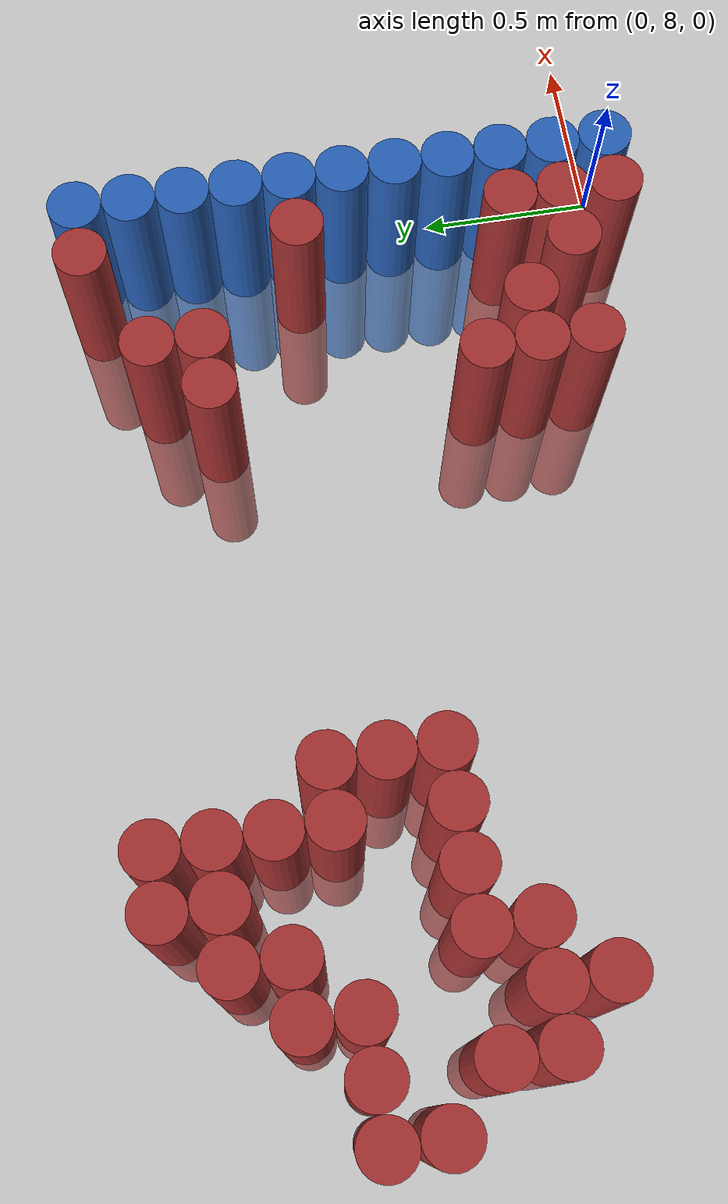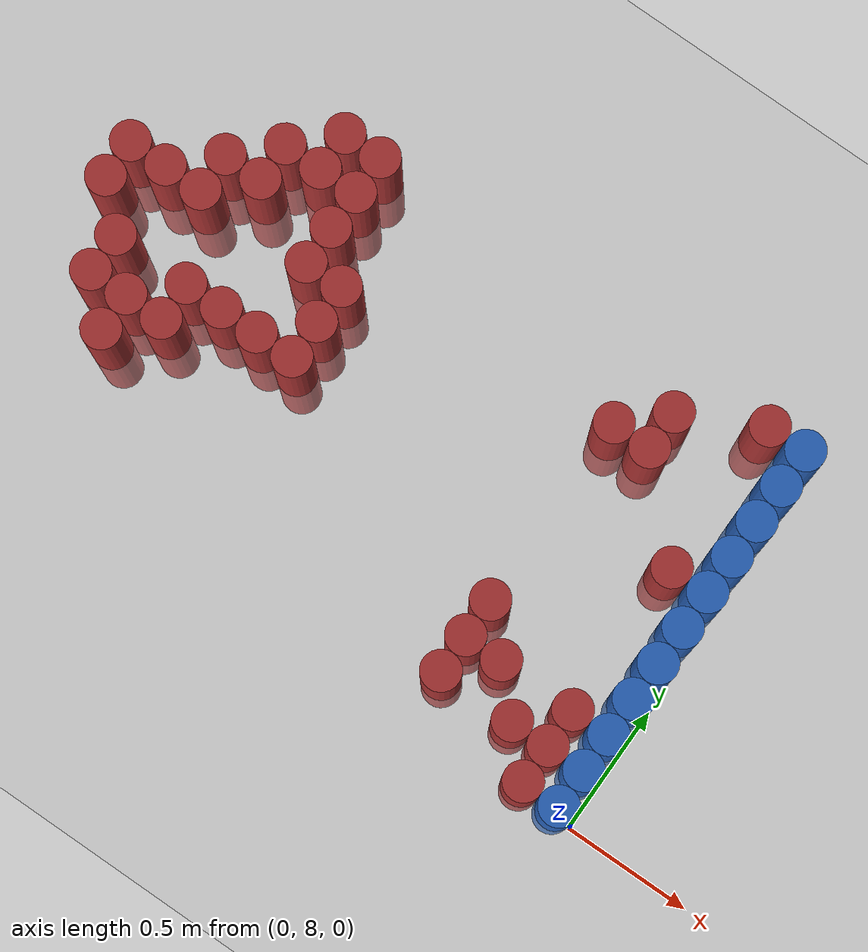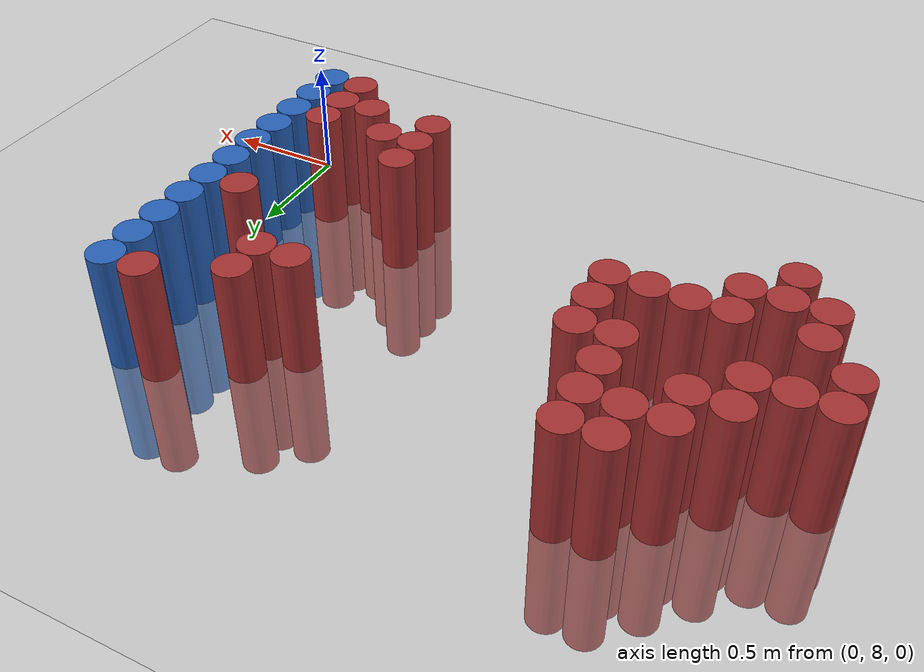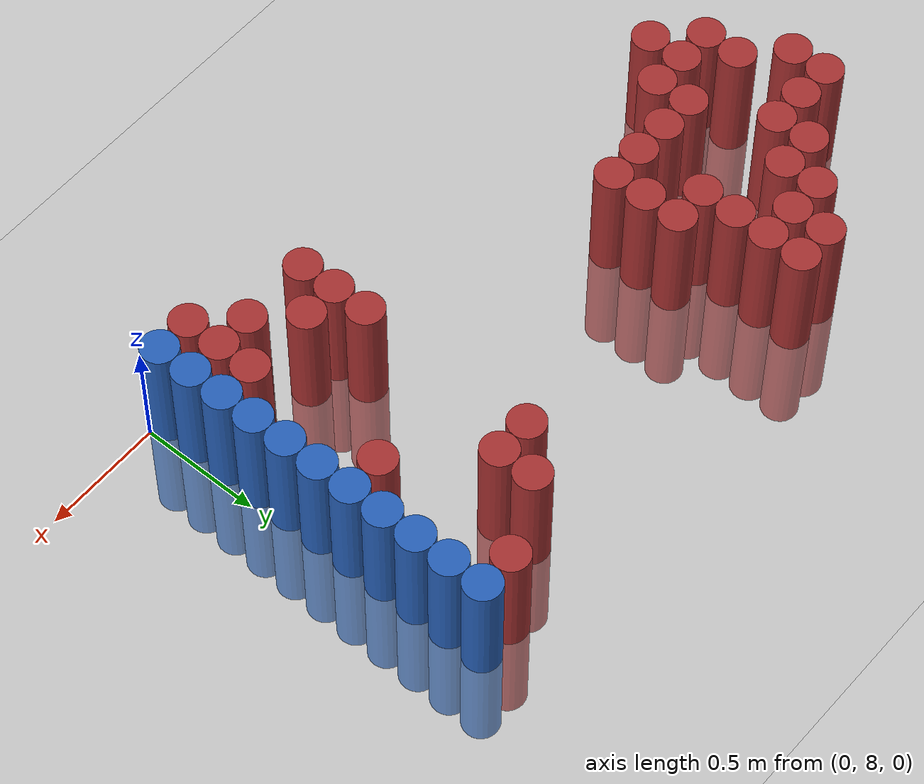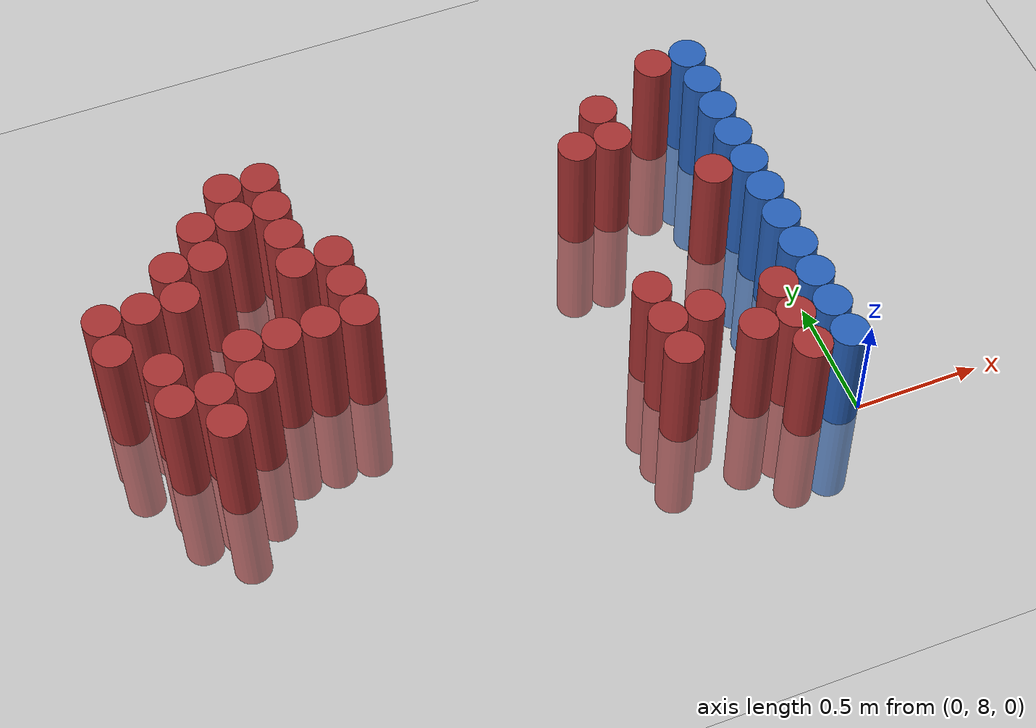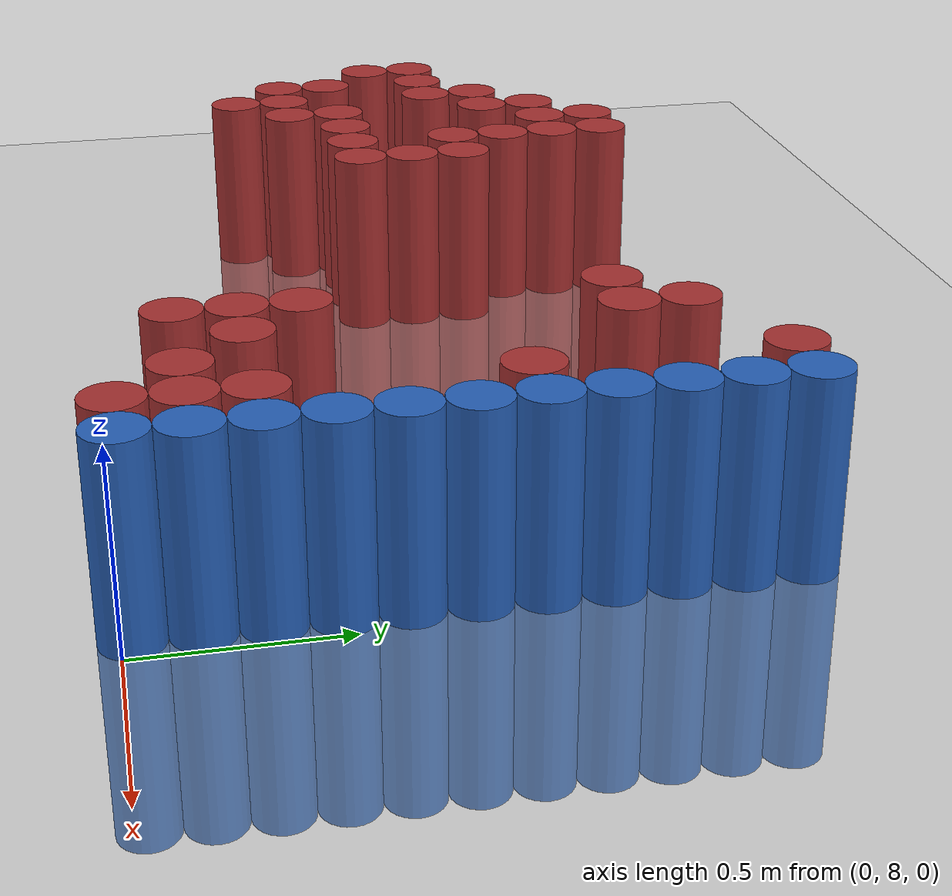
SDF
<sdf version="1.6">
 <world name="default">
  <model name="ground_plane">
   <static>1</static>
   <link name="link">
    <collision name="collision">
     <geometry><plane><normal>0 0 1</normal><size>100 100</size></plane></geometry>
     <surface><friction><ode><mu>100</mu><mu2>50</mu2></ode></friction></surface>
    </collision>
    <visual name="visual">
     <cast_shadows>0</cast_shadows>
     <geometry><plane><normal>0 0 1</normal><size>100 100</size></plane></geometry>
     <material>
      <script><uri>file://media/materials/scripts/gazebo.material</uri><name>Gazebo/Grey</name></script>
     </material>
    </visual>
   </link>
  </model>
  <model name="unit_cylinder_225">
   <static>1</static>
   <pose>-2.625000 8.925000 0.000000 0.000000 0.000000 0.000000</pose>
   <link name="link">
    <inertial>
     <mass>1</mass>
     <inertia><ixx>0.145833</ixx><ixy>0</ixy><ixz>0</ixz><iyy>0.145833</iyy><iyz>0</iyz><izz>0.125</izz></inertia>
    </inertial>
    <collision name="collision">
     <geometry><cylinder><radius>0.075000</radius><length>1</length></cylinder></geometry>
    </collision>
    <visual name="visual">
     <geometry><cylinder><radius>0.075000</radius><length>1</length></cylinder></geometry>
     <material>
      <ambient>0.648000 0.192000 0.192000 1</ambient>
      <diffuse>0.648000 0.192000 0.192000 1</diffuse>
     </material>
     <material>
      <script><name>Gazebo/Grey</name><uri>file://media/materials/scripts/gazebo.material</uri></script>
     </material>
    </visual>
   </link>
  </model>
  <model name="unit_cylinder_226">
   <static>1</static>
   <pose>-2.625000 9.075000 0.000000 0.000000 0.000000 0.000000</pose>
   <link name="link">
    <inertial>
     <mass>1</mass>
     <inertia><ixx>0.145833</ixx><ixy>0</ixy><ixz>0</ixz><iyy>0.145833</iyy><iyz>0</iyz><izz>0.125</izz></inertia>
    </inertial>
    <collision name="collision">
     <geometry><cylinder><radius>0.075000</radius><length>1</length></cylinder></geometry>
    </collision>
    <visual name="visual">
     <geometry><cylinder><radius>0.075000</radius><length>1</length></cylinder></geometry>
     <material>
      <ambient>0.648000 0.192000 0.192000 1</ambient>
      <diffuse>0.648000 0.192000 0.192000 1</diffuse>
     </material>
     <material>
      <script><name>Gazebo/Grey</name><uri>file://media/materials/scripts/gazebo.material</uri></script>
     </material>
    </visual>
   </link>
  </model>
  <model name="unit_cylinder_230">
   <static>1</static>
   <pose>-2.475000 8.625000 0.000000 0.000000 0.000000 0.000000</pose>
   <link name="link">
    <inertial>
     <mass>1</mass>
     <inertia><ixx>0.145833</ixx><ixy>0</ixy><ixz>0</ixz><iyy>0.145833</iyy><iyz>0</iyz><izz>0.125</izz></inertia>
    </inertial>
    <collision name="collision">
     <geometry><cylinder><radius>0.075000</radius><length>1</length></cylinder></geometry>
    </collision>
    <visual name="visual">
     <geometry><cylinder><radius>0.075000</radius><length>1</length></cylinder></geometry>
     <material>
      <ambient>0.648000 0.192000 0.192000 1</ambient>
      <diffuse>0.648000 0.192000 0.192000 1</diffuse>
     </material>
     <material>
      <script><name>Gazebo/Grey</name><uri>file://media/materials/scripts/gazebo.material</uri></script>
     </material>
    </visual>
   </link>
  </model>
  <model name="unit_cylinder_231">
   <static>1</static>
   <pose>-2.475000 8.775000 0.000000 0.000000 0.000000 0.000000</pose>
   <link name="link">
    <inertial>
     <mass>1</mass>
     <inertia><ixx>0.145833</ixx><ixy>0</ixy><ixz>0</ixz><iyy>0.145833</iyy><iyz>0</iyz><izz>0.125</izz></inertia>
    </inertial>
    <collision name="collision">
     <geometry><cylinder><radius>0.075000</radius><length>1</length></cylinder></geometry>
    </collision>
    <visual name="visual">
     <geometry><cylinder><radius>0.075000</radius><length>1</length></cylinder></geometry>
     <material>
      <ambient>0.648000 0.192000 0.192000 1</ambient>
      <diffuse>0.648000 0.192000 0.192000 1</diffuse>
     </material>
     <material>
      <script><name>Gazebo/Grey</name><uri>file://media/materials/scripts/gazebo.material</uri></script>
     </material>
    </visual>
   </link>
  </model>
  <model name="unit_cylinder_232">
   <static>1</static>
   <pose>-2.475000 9.075000 0.000000 0.000000 0.000000 0.000000</pose>
   <link name="link">
    <inertial>
     <mass>1</mass>
     <inertia><ixx>0.145833</ixx><ixy>0</ixy><ixz>0</ixz><iyy>0.145833</iyy><iyz>0</iyz><izz>0.125</izz></inertia>
    </inertial>
    <collision name="collision">
     <geometry><cylinder><radius>0.075000</radius><length>1</length></cylinder></geometry>
    </collision>
    <visual name="visual">
     <geometry><cylinder><radius>0.075000</radius><length>1</length></cylinder></geometry>
     <material>
      <ambient>0.648000 0.192000 0.192000 1</ambient>
      <diffuse>0.648000 0.192000 0.192000 1</diffuse>
     </material>
     <material>
      <script><name>Gazebo/Grey</name><uri>file://media/materials/scripts/gazebo.material</uri></script>
     </material>
    </visual>
   </link>
  </model>
  <model name="unit_cylinder_234">
   <static>1</static>
   <pose>-2.325000 8.475000 0.000000 0.000000 0.000000 0.000000</pose>
   <link name="link">
    <inertial>
     <mass>1</mass>
     <inertia><ixx>0.145833</ixx><ixy>0</ixy><ixz>0</ixz><iyy>0.145833</iyy><iyz>0</iyz><izz>0.125</izz></inertia>
    </inertial>
    <collision name="collision">
     <geometry><cylinder><radius>0.075000</radius><length>1</length></cylinder></geometry>
    </collision>
    <visual name="visual">
     <geometry><cylinder><radius>0.075000</radius><length>1</length></cylinder></geometry>
     <material>
      <ambient>0.648000 0.192000 0.192000 1</ambient>
      <diffuse>0.648000 0.192000 0.192000 1</diffuse>
     </material>
     <material>
      <script><name>Gazebo/Grey</name><uri>file://media/materials/scripts/gazebo.material</uri></script>
     </material>
    </visual>
   </link>
  </model>
  <model name="unit_cylinder_235">
   <static>1</static>
   <pose>-2.325000 8.625000 0.000000 0.000000 0.000000 0.000000</pose>
   <link name="link">
    <inertial>
     <mass>1</mass>
     <inertia><ixx>0.145833</ixx><ixy>0</ixy><ixz>0</ixz><iyy>0.145833</iyy><iyz>0</iyz><izz>0.125</izz></inertia>
    </inertial>
    <collision name="collision">
     <geometry><cylinder><radius>0.075000</radius><length>1</length></cylinder></geometry>
    </collision>
    <visual name="visual">
     <geometry><cylinder><radius>0.075000</radius><length>1</length></cylinder></geometry>
     <material>
      <ambient>0.648000 0.192000 0.192000 1</ambient>
      <diffuse>0.648000 0.192000 0.192000 1</diffuse>
     </material>
     <material>
      <script><name>Gazebo/Grey</name><uri>file://media/materials/scripts/gazebo.material</uri></script>
     </material>
    </visual>
   </link>
  </model>
  <model name="unit_cylinder_236">
   <static>1</static>
   <pose>-2.325000 9.075000 0.000000 0.000000 0.000000 0.000000</pose>
   <link name="link">
    <inertial>
     <mass>1</mass>
     <inertia><ixx>0.145833</ixx><ixy>0</ixy><ixz>0</ixz><iyy>0.145833</iyy><iyz>0</iyz><izz>0.125</izz></inertia>
    </inertial>
    <collision name="collision">
     <geometry><cylinder><radius>0.075000</radius><length>1</length></cylinder></geometry>
    </collision>
    <visual name="visual">
     <geometry><cylinder><radius>0.075000</radius><length>1</length></cylinder></geometry>
     <material>
      <ambient>0.648000 0.192000 0.192000 1</ambient>
      <diffuse>0.648000 0.192000 0.192000 1</diffuse>
     </material>
     <material>
      <script><name>Gazebo/Grey</name><uri>file://media/materials/scripts/gazebo.material</uri></script>
     </material>
    </visual>
   </link>
  </model>
  <model name="unit_cylinder_237">
   <static>1</static>
   <pose>-2.325000 9.225000 0.000000 0.000000 0.000000 0.000000</pose>
   <link name="link">
    <inertial>
     <mass>1</mass>
     <inertia><ixx>0.145833</ixx><ixy>0</ixy><ixz>0</ixz><iyy>0.145833</iyy><iyz>0</iyz><izz>0.125</izz></inertia>
    </inertial>
    <collision name="collision">
     <geometry><cylinder><radius>0.075000</radius><length>1</length></cylinder></geometry>
    </collision>
    <visual name="visual">
     <geometry><cylinder><radius>0.075000</radius><length>1</length></cylinder></geometry>
     <material>
      <ambient>0.648000 0.192000 0.192000 1</ambient>
      <diffuse>0.648000 0.192000 0.192000 1</diffuse>
     </material>
     <material>
      <script><name>Gazebo/Grey</name><uri>file://media/materials/scripts/gazebo.material</uri></script>
     </material>
    </visual>
   </link>
  </model>
  <model name="unit_cylinder_238">
   <static>1</static>
   <pose>-2.175000 8.625000 0.000000 0.000000 0.000000 0.000000</pose>
   <link name="link">
    <inertial>
     <mass>1</mass>
     <inertia><ixx>0.145833</ixx><ixy>0</ixy><ixz>0</ixz><iyy>0.145833</iyy><iyz>0</iyz><izz>0.125</izz></inertia>
    </inertial>
    <collision name="collision">
     <geometry><cylinder><radius>0.075000</radius><length>1</length></cylinder></geometry>
    </collision>
    <visual name="visual">
     <geometry><cylinder><radius>0.075000</radius><length>1</length></cylinder></geometry>
     <material>
      <ambient>0.648000 0.192000 0.192000 1</ambient>
      <diffuse>0.648000 0.192000 0.192000 1</diffuse>
     </material>
     <material>
      <script><name>Gazebo/Grey</name><uri>file://media/materials/scripts/gazebo.material</uri></script>
     </material>
    </visual>
   </link>
  </model>
  <model name="unit_cylinder_239">
   <static>1</static>
   <pose>-2.175000 8.775000 0.000000 0.000000 0.000000 0.000000</pose>
   <link name="link">
    <inertial>
     <mass>1</mass>
     <inertia><ixx>0.145833</ixx><ixy>0</ixy><ixz>0</ixz><iyy>0.145833</iyy><iyz>0</iyz><izz>0.125</izz></inertia>
    </inertial>
    <collision name="collision">
     <geometry><cylinder><radius>0.075000</radius><length>1</length></cylinder></geometry>
    </collision>
    <visual name="visual">
     <geometry><cylinder><radius>0.075000</radius><length>1</length></cylinder></geometry>
     <material>
      <ambient>0.648000 0.192000 0.192000 1</ambient>
      <diffuse>0.648000 0.192000 0.192000 1</diffuse>
     </material>
     <material>
      <script><name>Gazebo/Grey</name><uri>file://media/materials/scripts/gazebo.material</uri></script>
     </material>
    </visual>
   </link>
  </model>
  <model name="unit_cylinder_240">
   <static>1</static>
   <pose>-2.175000 9.225000 0.000000 0.000000 0.000000 0.000000</pose>
   <link name="link">
    <inertial>
     <mass>1</mass>
     <inertia><ixx>0.145833</ixx><ixy>0</ixy><ixz>0</ixz><iyy>0.145833</iyy><iyz>0</iyz><izz>0.125</izz></inertia>
    </inertial>
    <collision name="collision">
     <geometry><cylinder><radius>0.075000</radius><length>1</length></cylinder></geometry>
    </collision>
    <visual name="visual">
     <geometry><cylinder><radius>0.075000</radius><length>1</length></cylinder></geometry>
     <material>
      <ambient>0.648000 0.192000 0.192000 1</ambient>
      <diffuse>0.648000 0.192000 0.192000 1</diffuse>
     </material>
     <material>
      <script><name>Gazebo/Grey</name><uri>file://media/materials/scripts/gazebo.material</uri></script>
     </material>
    </visual>
   </link>
  </model>
  <model name="unit_cylinder_241">
   <static>1</static>
   <pose>-2.175000 9.375000 0.000000 0.000000 0.000000 0.000000</pose>
   <link name="link">
    <inertial>
     <mass>1</mass>
     <inertia><ixx>0.145833</ixx><ixy>0</ixy><ixz>0</ixz><iyy>0.145833</iyy><iyz>0</iyz><izz>0.125</izz></inertia>
    </inertial>
    <collision name="collision">
     <geometry><cylinder><radius>0.075000</radius><length>1</length></cylinder></geometry>
    </collision>
    <visual name="visual">
     <geometry><cylinder><radius>0.075000</radius><length>1</length></cylinder></geometry>
     <material>
      <ambient>0.648000 0.192000 0.192000 1</ambient>
      <diffuse>0.648000 0.192000 0.192000 1</diffuse>
     </material>
     <material>
      <script><name>Gazebo/Grey</name><uri>file://media/materials/scripts/gazebo.material</uri></script>
     </material>
    </visual>
   </link>
  </model>
  <model name="unit_cylinder_242">
   <static>1</static>
   <pose>-2.025000 8.775000 0.000000 0.000000 0.000000 0.000000</pose>
   <link name="link">
    <inertial>
     <mass>1</mass>
     <inertia><ixx>0.145833</ixx><ixy>0</ixy><ixz>0</ixz><iyy>0.145833</iyy><iyz>0</iyz><izz>0.125</izz></inertia>
    </inertial>
    <collision name="collision">
     <geometry><cylinder><radius>0.075000</radius><length>1</length></cylinder></geometry>
    </collision>
    <visual name="visual">
     <geometry><cylinder><radius>0.075000</radius><length>1</length></cylinder></geometry>
     <material>
      <ambient>0.648000 0.192000 0.192000 1</ambient>
      <diffuse>0.648000 0.192000 0.192000 1</diffuse>
     </material>
     <material>
      <script><name>Gazebo/Grey</name><uri>file://media/materials/scripts/gazebo.material</uri></script>
     </material>
    </visual>
   </link>
  </model>
  <model name="unit_cylinder_243">
   <static>1</static>
   <pose>-2.025000 9.375000 0.000000 0.000000 0.000000 0.000000</pose>
   <link name="link">
    <inertial>
     <mass>1</mass>
     <inertia><ixx>0.145833</ixx><ixy>0</ixy><ixz>0</ixz><iyy>0.145833</iyy><iyz>0</iyz><izz>0.125</izz></inertia>
    </inertial>
    <collision name="collision">
     <geometry><cylinder><radius>0.075000</radius><length>1</length></cylinder></geometry>
    </collision>
    <visual name="visual">
     <geometry><cylinder><radius>0.075000</radius><length>1</length></cylinder></geometry>
     <material>
      <ambient>0.648000 0.192000 0.192000 1</ambient>
      <diffuse>0.648000 0.192000 0.192000 1</diffuse>
     </material>
     <material>
      <script><name>Gazebo/Grey</name><uri>file://media/materials/scripts/gazebo.material</uri></script>
     </material>
    </visual>
   </link>
  </model>
  <model name="unit_cylinder_244">
   <static>1</static>
   <pose>-2.025000 9.525000 0.000000 0.000000 0.000000 0.000000</pose>
   <link name="link">
    <inertial>
     <mass>1</mass>
     <inertia><ixx>0.145833</ixx><ixy>0</ixy><ixz>0</ixz><iyy>0.145833</iyy><iyz>0</iyz><izz>0.125</izz></inertia>
    </inertial>
    <collision name="collision">
     <geometry><cylinder><radius>0.075000</radius><length>1</length></cylinder></geometry>
    </collision>
    <visual name="visual">
     <geometry><cylinder><radius>0.075000</radius><length>1</length></cylinder></geometry>
     <material>
      <ambient>0.648000 0.192000 0.192000 1</ambient>
      <diffuse>0.648000 0.192000 0.192000 1</diffuse>
     </material>
     <material>
      <script><name>Gazebo/Grey</name><uri>file://media/materials/scripts/gazebo.material</uri></script>
     </material>
    </visual>
   </link>
  </model>
  <model name="unit_cylinder_245">
   <static>1</static>
   <pose>-1.875000 8.775000 0.000000 0.000000 0.000000 0.000000</pose>
   <link name="link">
    <inertial>
     <mass>1</mass>
     <inertia><ixx>0.145833</ixx><ixy>0</ixy><ixz>0</ixz><iyy>0.145833</iyy><iyz>0</iyz><izz>0.125</izz></inertia>
    </inertial>
    <collision name="collision">
     <geometry><cylinder><radius>0.075000</radius><length>1</length></cylinder></geometry>
    </collision>
    <visual name="visual">
     <geometry><cylinder><radius>0.075000</radius><length>1</length></cylinder></geometry>
     <material>
      <ambient>0.648000 0.192000 0.192000 1</ambient>
      <diffuse>0.648000 0.192000 0.192000 1</diffuse>
     </material>
     <material>
      <script><name>Gazebo/Grey</name><uri>file://media/materials/scripts/gazebo.material</uri></script>
     </material>
    </visual>
   </link>
  </model>
  <model name="unit_cylinder_246">
   <static>1</static>
   <pose>-1.875000 9.075000 0.000000 0.000000 0.000000 0.000000</pose>
   <link name="link">
    <inertial>
     <mass>1</mass>
     <inertia><ixx>0.145833</ixx><ixy>0</ixy><ixz>0</ixz><iyy>0.145833</iyy><iyz>0</iyz><izz>0.125</izz></inertia>
    </inertial>
    <collision name="collision">
     <geometry><cylinder><radius>0.075000</radius><length>1</length></cylinder></geometry>
    </collision>
    <visual name="visual">
     <geometry><cylinder><radius>0.075000</radius><length>1</length></cylinder></geometry>
     <material>
      <ambient>0.648000 0.192000 0.192000 1</ambient>
      <diffuse>0.648000 0.192000 0.192000 1</diffuse>
     </material>
     <material>
      <script><name>Gazebo/Grey</name><uri>file://media/materials/scripts/gazebo.material</uri></script>
     </material>
    </visual>
   </link>
  </model>
  <model name="unit_cylinder_247">
   <static>1</static>
   <pose>-1.875000 9.225000 0.000000 0.000000 0.000000 0.000000</pose>
   <link name="link">
    <inertial>
     <mass>1</mass>
     <inertia><ixx>0.145833</ixx><ixy>0</ixy><ixz>0</ixz><iyy>0.145833</iyy><iyz>0</iyz><izz>0.125</izz></inertia>
    </inertial>
    <collision name="collision">
     <geometry><cylinder><radius>0.075000</radius><length>1</length></cylinder></geometry>
    </collision>
    <visual name="visual">
     <geometry><cylinder><radius>0.075000</radius><length>1</length></cylinder></geometry>
     <material>
      <ambient>0.648000 0.192000 0.192000 1</ambient>
      <diffuse>0.648000 0.192000 0.192000 1</diffuse>
     </material>
     <material>
      <script><name>Gazebo/Grey</name><uri>file://media/materials/scripts/gazebo.material</uri></script>
     </material>
    </visual>
   </link>
  </model>
  <model name="unit_cylinder_248">
   <static>1</static>
   <pose>-1.875000 9.375000 0.000000 0.000000 0.000000 0.000000</pose>
   <link name="link">
    <inertial>
     <mass>1</mass>
     <inertia><ixx>0.145833</ixx><ixy>0</ixy><ixz>0</ixz><iyy>0.145833</iyy><iyz>0</iyz><izz>0.125</izz></inertia>
    </inertial>
    <collision name="collision">
     <geometry><cylinder><radius>0.075000</radius><length>1</length></cylinder></geometry>
    </collision>
    <visual name="visual">
     <geometry><cylinder><radius>0.075000</radius><length>1</length></cylinder></geometry>
     <material>
      <ambient>0.648000 0.192000 0.192000 1</ambient>
      <diffuse>0.648000 0.192000 0.192000 1</diffuse>
     </material>
     <material>
      <script><name>Gazebo/Grey</name><uri>file://media/materials/scripts/gazebo.material</uri></script>
     </material>
    </visual>
   </link>
  </model>
  <model name="unit_cylinder_249">
   <static>1</static>
   <pose>-1.875000 9.525000 0.000000 0.000000 0.000000 0.000000</pose>
   <link name="link">
    <inertial>
     <mass>1</mass>
     <inertia><ixx>0.145833</ixx><ixy>0</ixy><ixz>0</ixz><iyy>0.145833</iyy><iyz>0</iyz><izz>0.125</izz></inertia>
    </inertial>
    <collision name="collision">
     <geometry><cylinder><radius>0.075000</radius><length>1</length></cylinder></geometry>
    </collision>
    <visual name="visual">
     <geometry><cylinder><radius>0.075000</radius><length>1</length></cylinder></geometry>
     <material>
      <ambient>0.648000 0.192000 0.192000 1</ambient>
      <diffuse>0.648000 0.192000 0.192000 1</diffuse>
     </material>
     <material>
      <script><name>Gazebo/Grey</name><uri>file://media/materials/scripts/gazebo.material</uri></script>
     </material>
    </visual>
   </link>
  </model>
  <model name="unit_cylinder_250">
   <static>1</static>
   <pose>-1.725000 8.775000 0.000000 0.000000 0.000000 0.000000</pose>
   <link name="link">
    <inertial>
     <mass>1</mass>
     <inertia><ixx>0.145833</ixx><ixy>0</ixy><ixz>0</ixz><iyy>0.145833</iyy><iyz>0</iyz><izz>0.125</izz></inertia>
    </inertial>
    <collision name="collision">
     <geometry><cylinder><radius>0.075000</radius><length>1</length></cylinder></geometry>
    </collision>
    <visual name="visual">
     <geometry><cylinder><radius>0.075000</radius><length>1</length></cylinder></geometry>
     <material>
      <ambient>0.648000 0.192000 0.192000 1</ambient>
      <diffuse>0.648000 0.192000 0.192000 1</diffuse>
     </material>
     <material>
      <script><name>Gazebo/Grey</name><uri>file://media/materials/scripts/gazebo.material</uri></script>
     </material>
    </visual>
   </link>
  </model>
  <model name="unit_cylinder_251">
   <static>1</static>
   <pose>-1.725000 8.925000 0.000000 0.000000 0.000000 0.000000</pose>
   <link name="link">
    <inertial>
     <mass>1</mass>
     <inertia><ixx>0.145833</ixx><ixy>0</ixy><ixz>0</ixz><iyy>0.145833</iyy><iyz>0</iyz><izz>0.125</izz></inertia>
    </inertial>
    <collision name="collision">
     <geometry><cylinder><radius>0.075000</radius><length>1</length></cylinder></geometry>
    </collision>
    <visual name="visual">
     <geometry><cylinder><radius>0.075000</radius><length>1</length></cylinder></geometry>
     <material>
      <ambient>0.648000 0.192000 0.192000 1</ambient>
      <diffuse>0.648000 0.192000 0.192000 1</diffuse>
     </material>
     <material>
      <script><name>Gazebo/Grey</name><uri>file://media/materials/scripts/gazebo.material</uri></script>
     </material>
    </visual>
   </link>
  </model>
  <model name="unit_cylinder_252">
   <static>1</static>
   <pose>-1.725000 9.075000 0.000000 0.000000 0.000000 0.000000</pose>
   <link name="link">
    <inertial>
     <mass>1</mass>
     <inertia><ixx>0.145833</ixx><ixy>0</ixy><ixz>0</ixz><iyy>0.145833</iyy><iyz>0</iyz><izz>0.125</izz></inertia>
    </inertial>
    <collision name="collision">
     <geometry><cylinder><radius>0.075000</radius><length>1</length></cylinder></geometry>
    </collision>
    <visual name="visual">
     <geometry><cylinder><radius>0.075000</radius><length>1</length></cylinder></geometry>
     <material>
      <ambient>0.648000 0.192000 0.192000 1</ambient>
      <diffuse>0.648000 0.192000 0.192000 1</diffuse>
     </material>
     <material>
      <script><name>Gazebo/Grey</name><uri>file://media/materials/scripts/gazebo.material</uri></script>
     </material>
    </visual>
   </link>
  </model>
  <model name="unit_cylinder_270">
   <static>1</static>
   <pose>-0.675000 8.175000 0.000000 0.000000 0.000000 0.000000</pose>
   <link name="link">
    <inertial>
     <mass>1</mass>
     <inertia><ixx>0.145833</ixx><ixy>0</ixy><ixz>0</ixz><iyy>0.145833</iyy><iyz>0</iyz><izz>0.125</izz></inertia>
    </inertial>
    <collision name="collision">
     <geometry><cylinder><radius>0.075000</radius><length>1</length></cylinder></geometry>
    </collision>
    <visual name="visual">
     <geometry><cylinder><radius>0.075000</radius><length>1</length></cylinder></geometry>
     <material>
      <ambient>0.648000 0.192000 0.192000 1</ambient>
      <diffuse>0.648000 0.192000 0.192000 1</diffuse>
     </material>
     <material>
      <script><name>Gazebo/Grey</name><uri>file://media/materials/scripts/gazebo.material</uri></script>
     </material>
    </visual>
   </link>
  </model>
  <model name="unit_cylinder_271">
   <static>1</static>
   <pose>-0.675000 8.325000 0.000000 0.000000 0.000000 0.000000</pose>
   <link name="link">
    <inertial>
     <mass>1</mass>
     <inertia><ixx>0.145833</ixx><ixy>0</ixy><ixz>0</ixz><iyy>0.145833</iyy><iyz>0</iyz><izz>0.125</izz></inertia>
    </inertial>
    <collision name="collision">
     <geometry><cylinder><radius>0.075000</radius><length>1</length></cylinder></geometry>
    </collision>
    <visual name="visual">
     <geometry><cylinder><radius>0.075000</radius><length>1</length></cylinder></geometry>
     <material>
      <ambient>0.648000 0.192000 0.192000 1</ambient>
      <diffuse>0.648000 0.192000 0.192000 1</diffuse>
     </material>
     <material>
      <script><name>Gazebo/Grey</name><uri>file://media/materials/scripts/gazebo.material</uri></script>
     </material>
    </visual>
   </link>
  </model>
  <model name="unit_cylinder_272">
   <static>1</static>
   <pose>-0.675000 8.475000 0.000000 0.000000 0.000000 0.000000</pose>
   <link name="link">
    <inertial>
     <mass>1</mass>
     <inertia><ixx>0.145833</ixx><ixy>0</ixy><ixz>0</ixz><iyy>0.145833</iyy><iyz>0</iyz><izz>0.125</izz></inertia>
    </inertial>
    <collision name="collision">
     <geometry><cylinder><radius>0.075000</radius><length>1</length></cylinder></geometry>
    </collision>
    <visual name="visual">
     <geometry><cylinder><radius>0.075000</radius><length>1</length></cylinder></geometry>
     <material>
      <ambient>0.648000 0.192000 0.192000 1</ambient>
      <diffuse>0.648000 0.192000 0.192000 1</diffuse>
     </material>
     <material>
      <script><name>Gazebo/Grey</name><uri>file://media/materials/scripts/gazebo.material</uri></script>
     </material>
    </visual>
   </link>
  </model>
  <model name="unit_cylinder_273">
   <static>1</static>
   <pose>-0.675000 9.225000 0.000000 0.000000 0.000000 0.000000</pose>
   <link name="link">
    <inertial>
     <mass>1</mass>
     <inertia><ixx>0.145833</ixx><ixy>0</ixy><ixz>0</ixz><iyy>0.145833</iyy><iyz>0</iyz><izz>0.125</izz></inertia>
    </inertial>
    <collision name="collision">
     <geometry><cylinder><radius>0.075000</radius><length>1</length></cylinder></geometry>
    </collision>
    <visual name="visual">
     <geometry><cylinder><radius>0.075000</radius><length>1</length></cylinder></geometry>
     <material>
      <ambient>0.648000 0.192000 0.192000 1</ambient>
      <diffuse>0.648000 0.192000 0.192000 1</diffuse>
     </material>
     <material>
      <script><name>Gazebo/Grey</name><uri>file://media/materials/scripts/gazebo.material</uri></script>
     </material>
    </visual>
   </link>
  </model>
  <model name="unit_cylinder_279">
   <static>1</static>
   <pose>-0.525000 8.325000 0.000000 0.000000 0.000000 0.000000</pose>
   <link name="link">
    <inertial>
     <mass>1</mass>
     <inertia><ixx>0.145833</ixx><ixy>0</ixy><ixz>0</ixz><iyy>0.145833</iyy><iyz>0</iyz><izz>0.125</izz></inertia>
    </inertial>
    <collision name="collision">
     <geometry><cylinder><radius>0.075000</radius><length>1</length></cylinder></geometry>
    </collision>
    <visual name="visual">
     <geometry><cylinder><radius>0.075000</radius><length>1</length></cylinder></geometry>
     <material>
      <ambient>0.648000 0.192000 0.192000 1</ambient>
      <diffuse>0.648000 0.192000 0.192000 1</diffuse>
     </material>
     <material>
      <script><name>Gazebo/Grey</name><uri>file://media/materials/scripts/gazebo.material</uri></script>
     </material>
    </visual>
   </link>
  </model>
  <model name="unit_cylinder_280">
   <static>1</static>
   <pose>-0.525000 9.225000 0.000000 0.000000 0.000000 0.000000</pose>
   <link name="link">
    <inertial>
     <mass>1</mass>
     <inertia><ixx>0.145833</ixx><ixy>0</ixy><ixz>0</ixz><iyy>0.145833</iyy><iyz>0</iyz><izz>0.125</izz></inertia>
    </inertial>
    <collision name="collision">
     <geometry><cylinder><radius>0.075000</radius><length>1</length></cylinder></geometry>
    </collision>
    <visual name="visual">
     <geometry><cylinder><radius>0.075000</radius><length>1</length></cylinder></geometry>
     <material>
      <ambient>0.648000 0.192000 0.192000 1</ambient>
      <diffuse>0.648000 0.192000 0.192000 1</diffuse>
     </material>
     <material>
      <script><name>Gazebo/Grey</name><uri>file://media/materials/scripts/gazebo.material</uri></script>
     </material>
    </visual>
   </link>
  </model>
  <model name="unit_cylinder_281">
   <static>1</static>
   <pose>-0.525000 9.375000 0.000000 0.000000 0.000000 0.000000</pose>
   <link name="link">
    <inertial>
     <mass>1</mass>
     <inertia><ixx>0.145833</ixx><ixy>0</ixy><ixz>0</ixz><iyy>0.145833</iyy><iyz>0</iyz><izz>0.125</izz></inertia>
    </inertial>
    <collision name="collision">
     <geometry><cylinder><radius>0.075000</radius><length>1</length></cylinder></geometry>
    </collision>
    <visual name="visual">
     <geometry><cylinder><radius>0.075000</radius><length>1</length></cylinder></geometry>
     <material>
      <ambient>0.648000 0.192000 0.192000 1</ambient>
      <diffuse>0.648000 0.192000 0.192000 1</diffuse>
     </material>
     <material>
      <script><name>Gazebo/Grey</name><uri>file://media/materials/scripts/gazebo.material</uri></script>
     </material>
    </visual>
   </link>
  </model>
  <model name="unit_cylinder_287">
   <static>1</static>
   <pose>-0.375000 8.175000 0.000000 0.000000 0.000000 0.000000</pose>
   <link name="link">
    <inertial>
     <mass>1</mass>
     <inertia><ixx>0.145833</ixx><ixy>0</ixy><ixz>0</ixz><iyy>0.145833</iyy><iyz>0</iyz><izz>0.125</izz></inertia>
    </inertial>
    <collision name="collision">
     <geometry><cylinder><radius>0.075000</radius><length>1</length></cylinder></geometry>
    </collision>
    <visual name="visual">
     <geometry><cylinder><radius>0.075000</radius><length>1</length></cylinder></geometry>
     <material>
      <ambient>0.648000 0.192000 0.192000 1</ambient>
      <diffuse>0.648000 0.192000 0.192000 1</diffuse>
     </material>
     <material>
      <script><name>Gazebo/Grey</name><uri>file://media/materials/scripts/gazebo.material</uri></script>
     </material>
    </visual>
   </link>
  </model>
  <model name="unit_cylinder_299">
   <static>1</static>
   <pose>-0.225000 8.025000 0.000000 0.000000 0.000000 0.000000</pose>
   <link name="link">
    <inertial>
     <mass>1</mass>
     <inertia><ixx>0.145833</ixx><ixy>0</ixy><ixz>0</ixz><iyy>0.145833</iyy><iyz>0</iyz><izz>0.125</izz></inertia>
    </inertial>
    <collision name="collision">
     <geometry><cylinder><radius>0.075000</radius><length>1</length></cylinder></geometry>
    </collision>
    <visual name="visual">
     <geometry><cylinder><radius>0.075000</radius><length>1</length></cylinder></geometry>
     <material>
      <ambient>0.648000 0.192000 0.192000 1</ambient>
      <diffuse>0.648000 0.192000 0.192000 1</diffuse>
     </material>
     <material>
      <script><name>Gazebo/Grey</name><uri>file://media/materials/scripts/gazebo.material</uri></script>
     </material>
    </visual>
   </link>
  </model>
  <model name="unit_cylinder_300">
   <static>1</static>
   <pose>-0.225000 8.175000 0.000000 0.000000 0.000000 0.000000</pose>
   <link name="link">
    <inertial>
     <mass>1</mass>
     <inertia><ixx>0.145833</ixx><ixy>0</ixy><ixz>0</ixz><iyy>0.145833</iyy><iyz>0</iyz><izz>0.125</izz></inertia>
    </inertial>
    <collision name="collision">
     <geometry><cylinder><radius>0.075000</radius><length>1</length></cylinder></geometry>
    </collision>
    <visual name="visual">
     <geometry><cylinder><radius>0.075000</radius><length>1</length></cylinder></geometry>
     <material>
      <ambient>0.648000 0.192000 0.192000 1</ambient>
      <diffuse>0.648000 0.192000 0.192000 1</diffuse>
     </material>
     <material>
      <script><name>Gazebo/Grey</name><uri>file://media/materials/scripts/gazebo.material</uri></script>
     </material>
    </visual>
   </link>
  </model>
  <model name="unit_cylinder_301">
   <static>1</static>
   <pose>-0.225000 8.325000 0.000000 0.000000 0.000000 0.000000</pose>
   <link name="link">
    <inertial>
     <mass>1</mass>
     <inertia><ixx>0.145833</ixx><ixy>0</ixy><ixz>0</ixz><iyy>0.145833</iyy><iyz>0</iyz><izz>0.125</izz></inertia>
    </inertial>
    <collision name="collision">
     <geometry><cylinder><radius>0.075000</radius><length>1</length></cylinder></geometry>
    </collision>
    <visual name="visual">
     <geometry><cylinder><radius>0.075000</radius><length>1</length></cylinder></geometry>
     <material>
      <ambient>0.648000 0.192000 0.192000 1</ambient>
      <diffuse>0.648000 0.192000 0.192000 1</diffuse>
     </material>
     <material>
      <script><name>Gazebo/Grey</name><uri>file://media/materials/scripts/gazebo.material</uri></script>
     </material>
    </visual>
   </link>
  </model>
  <model name="unit_cylinder_302">
   <static>1</static>
   <pose>-0.225000 8.925000 0.000000 0.000000 0.000000 0.000000</pose>
   <link name="link">
    <inertial>
     <mass>1</mass>
     <inertia><ixx>0.145833</ixx><ixy>0</ixy><ixz>0</ixz><iyy>0.145833</iyy><iyz>0</iyz><izz>0.125</izz></inertia>
    </inertial>
    <collision name="collision">
     <geometry><cylinder><radius>0.075000</radius><length>1</length></cylinder></geometry>
    </collision>
    <visual name="visual">
     <geometry><cylinder><radius>0.075000</radius><length>1</length></cylinder></geometry>
     <material>
      <ambient>0.648000 0.192000 0.192000 1</ambient>
      <diffuse>0.648000 0.192000 0.192000 1</diffuse>
     </material>
     <material>
      <script><name>Gazebo/Grey</name><uri>file://media/materials/scripts/gazebo.material</uri></script>
     </material>
    </visual>
   </link>
  </model>
  <model name="unit_cylinder_303">
   <static>1</static>
   <pose>-0.225000 9.525000 0.000000 0.000000 0.000000 0.000000</pose>
   <link name="link">
    <inertial>
     <mass>1</mass>
     <inertia><ixx>0.145833</ixx><ixy>0</ixy><ixz>0</ixz><iyy>0.145833</iyy><iyz>0</iyz><izz>0.125</izz></inertia>
    </inertial>
    <collision name="collision">
     <geometry><cylinder><radius>0.075000</radius><length>1</length></cylinder></geometry>
    </collision>
    <visual name="visual">
     <geometry><cylinder><radius>0.075000</radius><length>1</length></cylinder></geometry>
     <material>
      <ambient>0.648000 0.192000 0.192000 1</ambient>
      <diffuse>0.648000 0.192000 0.192000 1</diffuse>
     </material>
     <material>
      <script><name>Gazebo/Grey</name><uri>file://media/materials/scripts/gazebo.material</uri></script>
     </material>
    </visual>
   </link>
  </model>
  <model name="unit_cylinder_323">
   <static>1</static>
   <pose>-0.075000 8.025000 0.000000 0.000000 0.000000 0.000000</pose>
   <link name="link">
    <inertial>
     <mass>1</mass>
     <inertia><ixx>0.145833</ixx><ixy>0</ixy><ixz>0</ixz><iyy>0.145833</iyy><iyz>0</iyz><izz>0.125</izz></inertia>
    </inertial>
    <collision name="collision">
     <geometry><cylinder><radius>0.075000</radius><length>1</length></cylinder></geometry>
    </collision>
    <visual name="visual">
     <geometry><cylinder><radius>0.075000</radius><length>1</length></cylinder></geometry>
     <material>
      <ambient>0.152000 0.379000 0.720000 1</ambient>
      <diffuse>0.152000 0.379000 0.720000 1</diffuse>
     </material>
     <material>
      <script><name>Gazebo/Grey</name><uri>file://media/materials/scripts/gazebo.material</uri></script>
     </material>
    </visual>
   </link>
  </model>
  <model name="unit_cylinder_324">
   <static>1</static>
   <pose>-0.075000 8.175000 0.000000 0.000000 0.000000 0.000000</pose>
   <link name="link">
    <inertial>
     <mass>1</mass>
     <inertia><ixx>0.145833</ixx><ixy>0</ixy><ixz>0</ixz><iyy>0.145833</iyy><iyz>0</iyz><izz>0.125</izz></inertia>
    </inertial>
    <collision name="collision">
     <geometry><cylinder><radius>0.075000</radius><length>1</length></cylinder></geometry>
    </collision>
    <visual name="visual">
     <geometry><cylinder><radius>0.075000</radius><length>1</length></cylinder></geometry>
     <material>
      <ambient>0.152000 0.379000 0.720000 1</ambient>
      <diffuse>0.152000 0.379000 0.720000 1</diffuse>
     </material>
     <material>
      <script><name>Gazebo/Grey</name><uri>file://media/materials/scripts/gazebo.material</uri></script>
     </material>
    </visual>
   </link>
  </model>
  <model name="unit_cylinder_325">
   <static>1</static>
   <pose>-0.075000 8.325000 0.000000 0.000000 0.000000 0.000000</pose>
   <link name="link">
    <inertial>
     <mass>1</mass>
     <inertia><ixx>0.145833</ixx><ixy>0</ixy><ixz>0</ixz><iyy>0.145833</iyy><iyz>0</iyz><izz>0.125</izz></inertia>
    </inertial>
    <collision name="collision">
     <geometry><cylinder><radius>0.075000</radius><length>1</length></cylinder></geometry>
    </collision>
    <visual name="visual">
     <geometry><cylinder><radius>0.075000</radius><length>1</length></cylinder></geometry>
     <material>
      <ambient>0.152000 0.379000 0.720000 1</ambient>
      <diffuse>0.152000 0.379000 0.720000 1</diffuse>
     </material>
     <material>
      <script><name>Gazebo/Grey</name><uri>file://media/materials/scripts/gazebo.material</uri></script>
     </material>
    </visual>
   </link>
  </model>
  <model name="unit_cylinder_326">
   <static>1</static>
   <pose>-0.075000 8.475000 0.000000 0.000000 0.000000 0.000000</pose>
   <link name="link">
    <inertial>
     <mass>1</mass>
     <inertia><ixx>0.145833</ixx><ixy>0</ixy><ixz>0</ixz><iyy>0.145833</iyy><iyz>0</iyz><izz>0.125</izz></inertia>
    </inertial>
    <collision name="collision">
     <geometry><cylinder><radius>0.075000</radius><length>1</length></cylinder></geometry>
    </collision>
    <visual name="visual">
     <geometry><cylinder><radius>0.075000</radius><length>1</length></cylinder></geometry>
     <material>
      <ambient>0.152000 0.379000 0.720000 1</ambient>
      <diffuse>0.152000 0.379000 0.720000 1</diffuse>
     </material>
     <material>
      <script><name>Gazebo/Grey</name><uri>file://media/materials/scripts/gazebo.material</uri></script>
     </material>
    </visual>
   </link>
  </model>
  <model name="unit_cylinder_327">
   <static>1</static>
   <pose>-0.075000 8.625000 0.000000 0.000000 0.000000 0.000000</pose>
   <link name="link">
    <inertial>
     <mass>1</mass>
     <inertia><ixx>0.145833</ixx><ixy>0</ixy><ixz>0</ixz><iyy>0.145833</iyy><iyz>0</iyz><izz>0.125</izz></inertia>
    </inertial>
    <collision name="collision">
     <geometry><cylinder><radius>0.075000</radius><length>1</length></cylinder></geometry>
    </collision>
    <visual name="visual">
     <geometry><cylinder><radius>0.075000</radius><length>1</length></cylinder></geometry>
     <material>
      <ambient>0.152000 0.379000 0.720000 1</ambient>
      <diffuse>0.152000 0.379000 0.720000 1</diffuse>
     </material>
     <material>
      <script><name>Gazebo/Grey</name><uri>file://media/materials/scripts/gazebo.material</uri></script>
     </material>
    </visual>
   </link>
  </model>
  <model name="unit_cylinder_328">
   <static>1</static>
   <pose>-0.075000 8.775000 0.000000 0.000000 0.000000 0.000000</pose>
   <link name="link">
    <inertial>
     <mass>1</mass>
     <inertia><ixx>0.145833</ixx><ixy>0</ixy><ixz>0</ixz><iyy>0.145833</iyy><iyz>0</iyz><izz>0.125</izz></inertia>
    </inertial>
    <collision name="collision">
     <geometry><cylinder><radius>0.075000</radius><length>1</length></cylinder></geometry>
    </collision>
    <visual name="visual">
     <geometry><cylinder><radius>0.075000</radius><length>1</length></cylinder></geometry>
     <material>
      <ambient>0.152000 0.379000 0.720000 1</ambient>
      <diffuse>0.152000 0.379000 0.720000 1</diffuse>
     </material>
     <material>
      <script><name>Gazebo/Grey</name><uri>file://media/materials/scripts/gazebo.material</uri></script>
     </material>
    </visual>
   </link>
  </model>
  <model name="unit_cylinder_329">
   <static>1</static>
   <pose>-0.075000 8.925000 0.000000 0.000000 0.000000 0.000000</pose>
   <link name="link">
    <inertial>
     <mass>1</mass>
     <inertia><ixx>0.145833</ixx><ixy>0</ixy><ixz>0</ixz><iyy>0.145833</iyy><iyz>0</iyz><izz>0.125</izz></inertia>
    </inertial>
    <collision name="collision">
     <geometry><cylinder><radius>0.075000</radius><length>1</length></cylinder></geometry>
    </collision>
    <visual name="visual">
     <geometry><cylinder><radius>0.075000</radius><length>1</length></cylinder></geometry>
     <material>
      <ambient>0.152000 0.379000 0.720000 1</ambient>
      <diffuse>0.152000 0.379000 0.720000 1</diffuse>
     </material>
     <material>
      <script><name>Gazebo/Grey</name><uri>file://media/materials/scripts/gazebo.material</uri></script>
     </material>
    </visual>
   </link>
  </model>
  <model name="unit_cylinder_330">
   <static>1</static>
   <pose>-0.075000 9.075000 0.000000 0.000000 0.000000 0.000000</pose>
   <link name="link">
    <inertial>
     <mass>1</mass>
     <inertia><ixx>0.145833</ixx><ixy>0</ixy><ixz>0</ixz><iyy>0.145833</iyy><iyz>0</iyz><izz>0.125</izz></inertia>
    </inertial>
    <collision name="collision">
     <geometry><cylinder><radius>0.075000</radius><length>1</length></cylinder></geometry>
    </collision>
    <visual name="visual">
     <geometry><cylinder><radius>0.075000</radius><length>1</length></cylinder></geometry>
     <material>
      <ambient>0.152000 0.379000 0.720000 1</ambient>
      <diffuse>0.152000 0.379000 0.720000 1</diffuse>
     </material>
     <material>
      <script><name>Gazebo/Grey</name><uri>file://media/materials/scripts/gazebo.material</uri></script>
     </material>
    </visual>
   </link>
  </model>
  <model name="unit_cylinder_331">
   <static>1</static>
   <pose>-0.075000 9.225000 0.000000 0.000000 0.000000 0.000000</pose>
   <link name="link">
    <inertial>
     <mass>1</mass>
     <inertia><ixx>0.145833</ixx><ixy>0</ixy><ixz>0</ixz><iyy>0.145833</iyy><iyz>0</iyz><izz>0.125</izz></inertia>
    </inertial>
    <collision name="collision">
     <geometry><cylinder><radius>0.075000</radius><length>1</length></cylinder></geometry>
    </collision>
    <visual name="visual">
     <geometry><cylinder><radius>0.075000</radius><length>1</length></cylinder></geometry>
     <material>
      <ambient>0.152000 0.379000 0.720000 1</ambient>
      <diffuse>0.152000 0.379000 0.720000 1</diffuse>
     </material>
     <material>
      <script><name>Gazebo/Grey</name><uri>file://media/materials/scripts/gazebo.material</uri></script>
     </material>
    </visual>
   </link>
  </model>
  <model name="unit_cylinder_332">
   <static>1</static>
   <pose>-0.075000 9.375000 0.000000 0.000000 0.000000 0.000000</pose>
   <link name="link">
    <inertial>
     <mass>1</mass>
     <inertia><ixx>0.145833</ixx><ixy>0</ixy><ixz>0</ixz><iyy>0.145833</iyy><iyz>0</iyz><izz>0.125</izz></inertia>
    </inertial>
    <collision name="collision">
     <geometry><cylinder><radius>0.075000</radius><length>1</length></cylinder></geometry>
    </collision>
    <visual name="visual">
     <geometry><cylinder><radius>0.075000</radius><length>1</length></cylinder></geometry>
     <material>
      <ambient>0.152000 0.379000 0.720000 1</ambient>
      <diffuse>0.152000 0.379000 0.720000 1</diffuse>
     </material>
     <material>
      <script><name>Gazebo/Grey</name><uri>file://media/materials/scripts/gazebo.material</uri></script>
     </material>
    </visual>
   </link>
  </model>
  <model name="unit_cylinder_333">
   <static>1</static>
   <pose>-0.075000 9.525000 0.000000 0.000000 0.000000 0.000000</pose>
   <link name="link">
    <inertial>
     <mass>1</mass>
     <inertia><ixx>0.145833</ixx><ixy>0</ixy><ixz>0</ixz><iyy>0.145833</iyy><iyz>0</iyz><izz>0.125</izz></inertia>
    </inertial>
    <collision name="collision">
     <geometry><cylinder><radius>0.075000</radius><length>1</length></cylinder></geometry>
    </collision>
    <visual name="visual">
     <geometry><cylinder><radius>0.075000</radius><length>1</length></cylinder></geometry>
     <material>
      <ambient>0.152000 0.379000 0.720000 1</ambient>
      <diffuse>0.152000 0.379000 0.720000 1</diffuse>
     </material>
     <material>
      <script><name>Gazebo/Grey</name><uri>file://media/materials/scripts/gazebo.material</uri></script>
     </material>
    </visual>
   </link>
  </model>
 </world>
</sdf>
